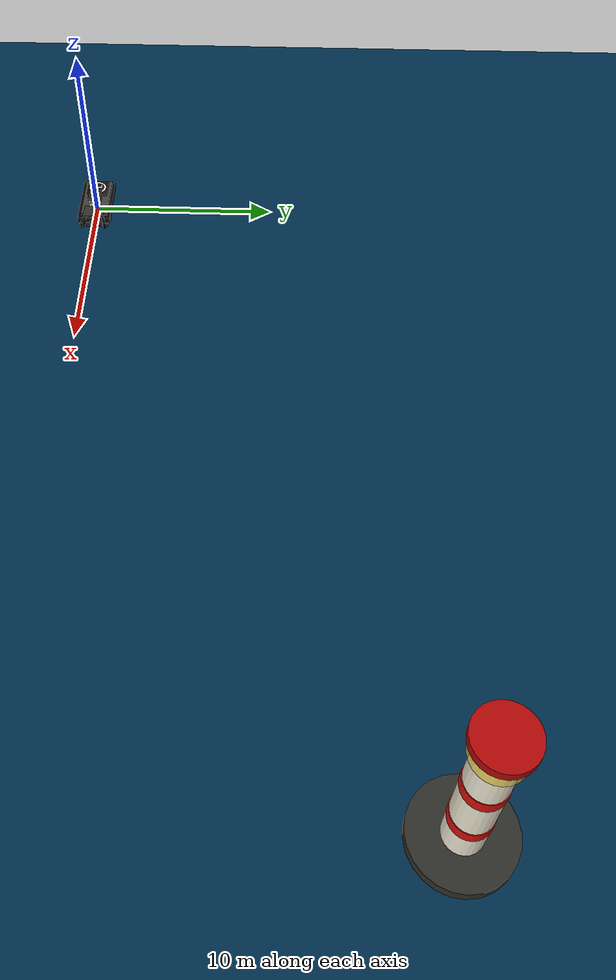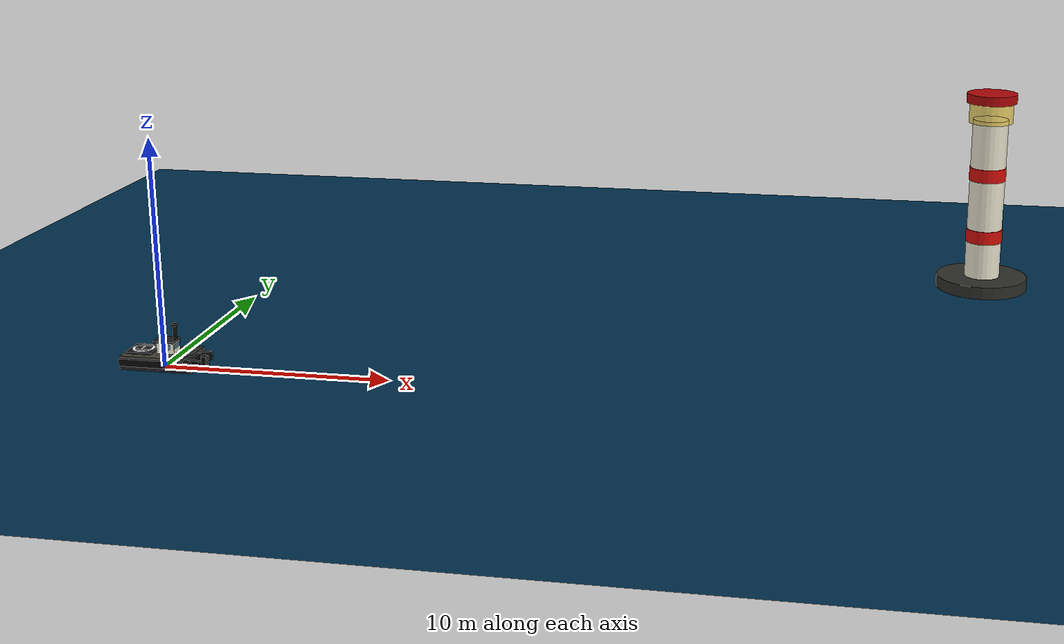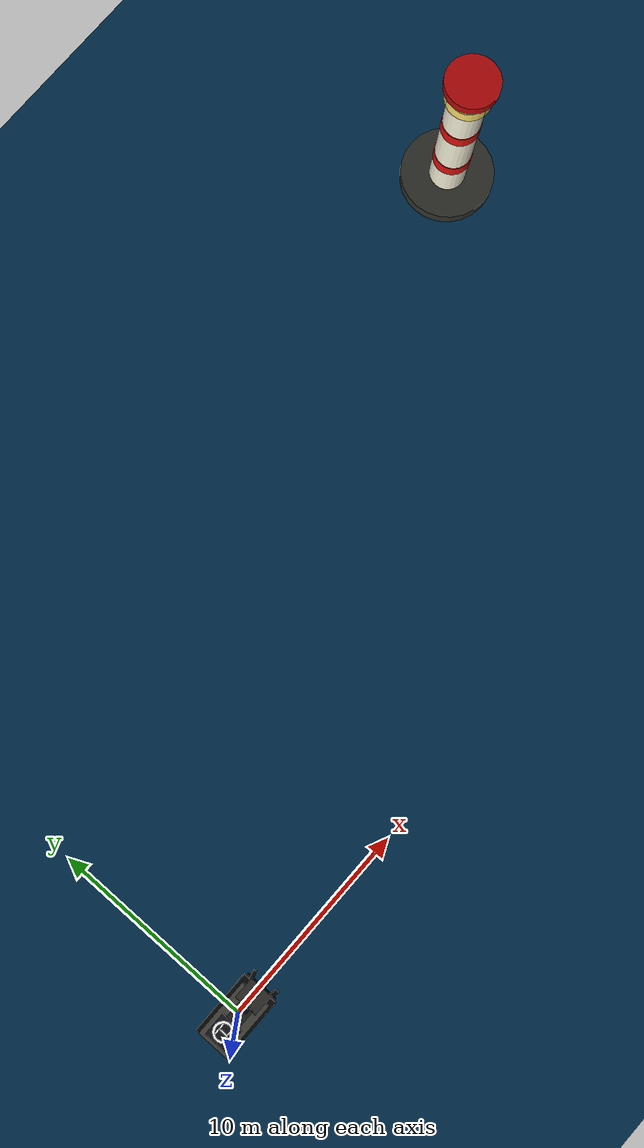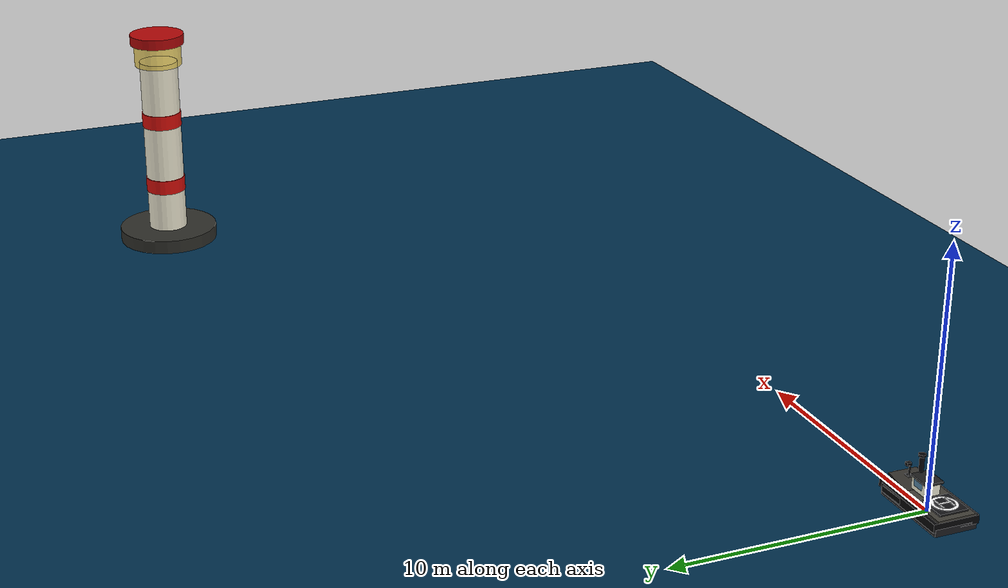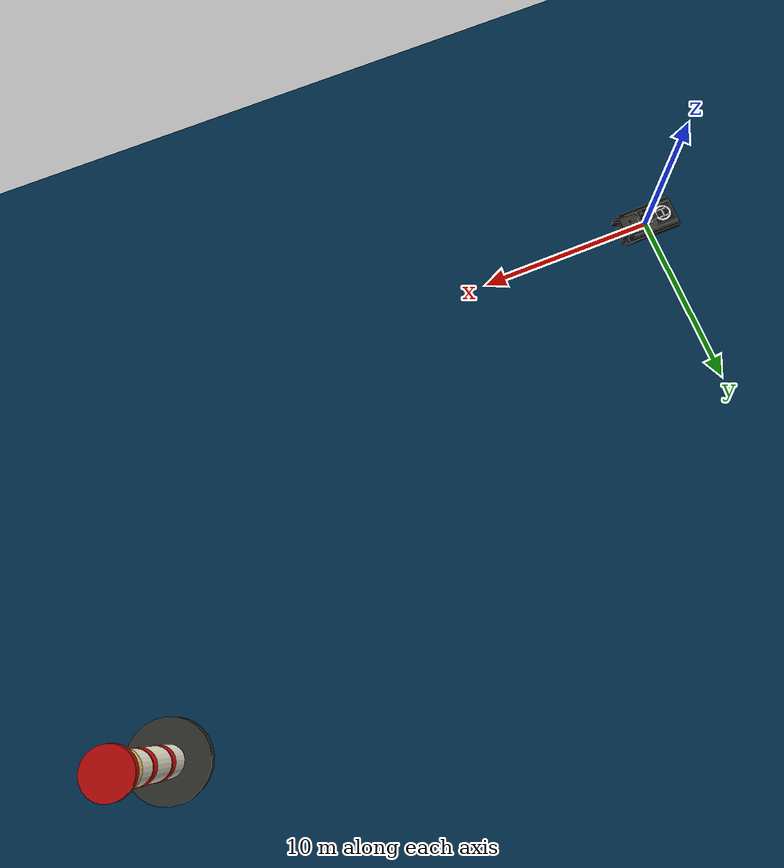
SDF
<sdf version="1.10">
 <world name="default">
  <plugin filename="gz-sim-physics-system" name="gz::sim::systems::Physics"/>
  <plugin filename="gz-sim-user-commands-system" name="gz::sim::systems::UserCommands"/>
  <plugin filename="gz-sim-scene-broadcaster-system" name="gz::sim::systems::SceneBroadcaster"/>
  <plugin filename="gz-sim-contact-system" name="gz::sim::systems::Contact"/>
  <plugin filename="gz-sim-imu-system" name="gz::sim::systems::Imu"/>
  <plugin filename="gz-sim-air-pressure-system" name="gz::sim::systems::AirPressure"/>
  <plugin filename="gz-sim-air-speed-system" name="gz::sim::systems::AirSpeed"/>
  <plugin filename="gz-sim-apply-link-wrench-system" name="gz::sim::systems::ApplyLinkWrench"/>
  <plugin filename="gz-sim-navsat-system" name="gz::sim::systems::NavSat"/>
  <plugin filename="gz-sim-magnetometer-system" name="gz::sim::systems::Magnetometer"/>
  <plugin filename="gz-sim-sensors-system" name="gz::sim::systems::Sensors">
   <render_engine>ogre2</render_engine>
  </plugin>
  <physics type="ode">
   <max_step_size>0.0040000000000000001</max_step_size>
   <real_time_factor>1</real_time_factor>
   <real_time_update_rate>250</real_time_update_rate>
  </physics>
  <gravity>0 0 -9.8000000000000007</gravity>
  <magnetic_field>6.0000000000000002e-06 2.3e-05 -4.1999999999999998e-05</magnetic_field>
  <atmosphere type="adiabatic"/>
  <scene>
   <grid>false</grid>
   <ambient>0.400000006 0.400000006 0.400000006 1</ambient>
   <background>0.699999988 0.699999988 0.699999988 1</background>
   <shadows>true</shadows>
  </scene>
  <spherical_coordinates>
   <surface_model>EARTH_WGS84</surface_model>
   <world_frame_orientation>ENU</world_frame_orientation>
   <latitude_deg>47.397971057728974</latitude_deg>
   <longitude_deg>8.5461637398001464</longitude_deg>
   <elevation>0</elevation>
   <heading_deg>0</heading_deg>
  </spherical_coordinates>
  <model name="ocean_plane">
   <static>true</static>
   <link name="ocean_link">
    <visual name="ocean_visual">
     <pose>0 0 -0.02 0 0 0</pose>
     <geometry><plane><normal>0 0 1</normal><size>1000 1000</size></plane></geometry>
     <material>
      <ambient>0 0.08 0.16 0.45</ambient>
      <diffuse>0 0.18 0.3 0.45</diffuse>
      <specular>0.03 0.05 0.06 1</specular>
     </material>
    </visual>
    <collision name="ocean_collision">
     <geometry><plane><normal>0 0 1</normal><size>300 300</size></plane></geometry>
    </collision>
    <inertial>
     <mass>1</mass>
     <inertia><ixx>1</ixx><ixy>0</ixy><ixz>0</ixz><iyy>1</iyy><iyz>0</iyz><izz>1</izz></inertia>
    </inertial>
   </link>
  </model>
  <plugin filename="libDroneDeckFollower.so" name="gz::sim::systems::DroneDeckFollower">
   <boat_name>landing_boat</boat_name>
   <drone_name>x500_0</drone_name>
   <deck_offset>-0.92 0 0.43 0 0 0</deck_offset>
   <release_topic>/model/x500_0/release_from_deck</release_topic>
   <relock_duration>4.0</relock_duration>
   <release_vertical_speed>0.9</release_vertical_speed>
   <release_after>1000000</release_after>
  </plugin>
  <model name="navigation_lighthouse">
   <static>true</static>
   <pose>35 18 0 0 0 0</pose>
   <link name="lighthouse_link">
    <collision name="base_collision">
     <pose>0 0 0.3 0 0 0</pose>
     <geometry><cylinder><radius>2.2</radius><length>0.6</length></cylinder></geometry>
    </collision>
    <visual name="base_visual">
     <pose>0 0 0.3 0 0 0</pose>
     <geometry><cylinder><radius>2.2</radius><length>0.6</length></cylinder></geometry>
     <material>
      <ambient>0.12 0.12 0.12 1</ambient>
      <diffuse>0.18 0.18 0.16 1</diffuse>
      <specular>0.05 0.05 0.05 1</specular>
     </material>
    </visual>
    <collision name="tower_collision">
     <pose>0 0 4.4 0 0 0</pose>
     <geometry><cylinder><radius>0.85</radius><length>8.2</length></cylinder></geometry>
    </collision>
    <visual name="tower_white_visual">
     <pose>0 0 4.4 0 0 0</pose>
     <geometry><cylinder><radius>0.85</radius><length>8.2</length></cylinder></geometry>
     <material>
      <ambient>0.85 0.83 0.76 1</ambient>
      <diffuse>0.95 0.93 0.84 1</diffuse>
      <specular>0.2 0.2 0.18 1</specular>
     </material>
    </visual>
    <visual name="red_band_lower_visual">
     <pose>0 0 2.7 0 0 0</pose>
     <geometry><cylinder><radius>0.88</radius><length>0.65</length></cylinder></geometry>
     <material>
      <ambient>0.55 0.04 0.03 1</ambient>
      <diffuse>0.85 0.06 0.04 1</diffuse>
      <specular>0.15 0.03 0.03 1</specular>
     </material>
    </visual>
    <visual name="red_band_upper_visual">
     <pose>0 0 5.8 0 0 0</pose>
     <geometry><cylinder><radius>0.88</radius><length>0.65</length></cylinder></geometry>
     <material>
      <ambient>0.55 0.04 0.03 1</ambient>
      <diffuse>0.85 0.06 0.04 1</diffuse>
      <specular>0.15 0.03 0.03 1</specular>
     </material>
    </visual>
    <visual name="lantern_room_visual">
     <pose>0 0 8.8 0 0 0</pose>
     <geometry><cylinder><radius>1.05</radius><length>0.9</length></cylinder></geometry>
     <material>
      <ambient>0.95 0.82 0.32 0.85</ambient>
      <diffuse>1 0.88 0.4 0.85</diffuse>
      <specular>1 0.95 0.7 1</specular>
     </material>
    </visual>
    <visual name="roof_visual">
     <pose>0 0 9.55 0 0 0</pose>
     <geometry><cylinder><radius>1.2</radius><length>0.45</length></cylinder></geometry>
     <material>
      <ambient>0.45 0.02 0.02 1</ambient>
      <diffuse>0.7 0.03 0.03 1</diffuse>
      <specular>0.18 0.04 0.04 1</specular>
     </material>
    </visual>
    <light name="beacon_light" type="point">
     <pose>0 0 8.95 0 0 0</pose>
     <cast_shadows>false</cast_shadows>
     <intensity>3</intensity>
     <diffuse>1 0.86 0.35 1</diffuse>
     <specular>1 0.9 0.55 1</specular>
     <attenuation>
      <range>80</range>
      <constant>0.6</constant>
      <linear>0.02</linear>
      <quadratic>0.001</quadratic>
     </attenuation>
    </light>
   </link>
  </model>
  <include>
   <uri>model://simple_boat</uri>
   <name>landing_boat</name>
   <pose>0 0 0.34999999999999998 0 0 0</pose>
  </include>
  <light name="directionallight" type="directional">
   <pose>3.6650413048508694 0.062467871162392719 2 0 0 0</pose>
   <intensity>1</intensity>
   <direction>0 0 -1</direction>
   <diffuse>0.800000012 0.800000012 0.800000012 1</diffuse>
   <specular>0.200000003 0.200000003 0.200000003 1</specular>
   <attenuation>
    <range>1000</range>
    <linear>0.01</linear>
    <constant>0.90000000000000002</constant>
    <quadratic>0.001</quadratic>
   </attenuation>
   <spot><inner_angle>0</inner_angle><outer_angle>0</outer_angle><falloff>0</falloff></spot>
  </light>
 </world>
</sdf>

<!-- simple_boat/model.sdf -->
<sdf version="1.8">
  <model name="simple_boat">
    <pose>0 0 0.35 0 0 0</pose>

    <link name="hull">
      <inertial>
        <mass>70.0</mass>
        <inertia>
          <ixx>22.0</ixx>
          <iyy>48.0</iyy>
          <izz>58.0</izz>
          <ixy>0</ixy>
          <ixz>0</ixz>
          <iyz>0</iyz>
        </inertia>
      </inertial>

      <collision name="hull_collision">
        <pose>0 0 -0.05 0 0 0</pose>
        <geometry>
          <box>
            <size>3.4 1.9 0.5</size>
          </box>
        </geometry>
      </collision>

      <visual name="lower_hull">
        <pose>-0.05 0 -0.16 0 0 0</pose>
        <geometry>
          <box>
            <size>3.25 1.65 0.28</size>
          </box>
        </geometry>
        <material>
          <ambient>0.08 0.08 0.09 1</ambient>
          <diffuse>0.12 0.12 0.13 1</diffuse>
          <specular>0.1 0.1 0.1 1</specular>
        </material>
      </visual>

      <visual name="upper_hull">
        <pose>-0.1 0 0.05 0 0 0</pose>
        <geometry>
          <box>
            <size>3.15 1.82 0.32</size>
          </box>
        </geometry>
        <material>
          <ambient>0.015 0.015 0.018 1</ambient>
          <diffuse>0.025 0.025 0.03 1</diffuse>
          <specular>0.18 0.18 0.2 1</specular>
        </material>
      </visual>

      <visual name="bow_side_left">
        <pose>1.46 0.52 0.04 0 0 0.31</pose>
        <geometry>
          <box>
            <size>0.92 0.16 0.38</size>
          </box>
        </geometry>
        <material>
          <ambient>0.015 0.015 0.018 1</ambient>
          <diffuse>0.025 0.025 0.03 1</diffuse>
          <specular>0.18 0.18 0.2 1</specular>
        </material>
      </visual>

      <visual name="bow_side_right">
        <pose>1.46 -0.52 0.04 0 0 -0.31</pose>
        <geometry>
          <box>
            <size>0.92 0.16 0.38</size>
          </box>
        </geometry>
        <material>
          <ambient>0.015 0.015 0.018 1</ambient>
          <diffuse>0.025 0.025 0.03 1</diffuse>
          <specular>0.18 0.18 0.2 1</specular>
        </material>
      </visual>

      <visual name="bow_center_nose">
        <pose>1.82 0 0.04 0 0 0</pose>
        <geometry>
          <box>
            <size>0.2 0.32 0.4</size>
          </box>
        </geometry>
        <material>
          <ambient>0.012 0.012 0.015 1</ambient>
          <diffuse>0.022 0.022 0.026 1</diffuse>
          <specular>0.16 0.16 0.18 1</specular>
        </material>
      </visual>

      <visual name="bow_keel_line">
        <pose>1.55 0 -0.34 0 1.5708 0</pose>
        <geometry>
          <cylinder>
            <radius>0.028</radius>
            <length>0.72</length>
          </cylinder>
        </geometry>
        <material>
          <ambient>0.006 0.006 0.008 1</ambient>
          <diffuse>0.012 0.012 0.014 1</diffuse>
        </material>
      </visual>

      <visual name="foredeck_slope">
        <pose>1.05 0 0.36 0 -0.16 0</pose>
        <geometry>
          <box>
            <size>1.1 1.16 0.055</size>
          </box>
        </geometry>
        <material>
          <ambient>0.12 0.12 0.115 1</ambient>
          <diffuse>0.2 0.19 0.17 1</diffuse>
          <specular>0.08 0.08 0.08 1</specular>
        </material>
      </visual>

      <visual name="bow_stem">
        <pose>1.94 0 0.03 0 0 0</pose>
        <geometry>
          <box>
            <size>0.08 0.12 0.42</size>
          </box>
        </geometry>
        <material>
          <ambient>0.01 0.01 0.012 1</ambient>
          <diffuse>0.02 0.02 0.024 1</diffuse>
          <specular>0.16 0.16 0.18 1</specular>
        </material>
      </visual>

      <visual name="hull_side_fairing_left">
        <pose>0.05 0.86 0.04 0 0 0.035</pose>
        <geometry>
          <box>
            <size>2.65 0.08 0.22</size>
          </box>
        </geometry>
        <material>
          <ambient>0.01 0.01 0.012 1</ambient>
          <diffuse>0.018 0.018 0.022 1</diffuse>
          <specular>0.14 0.14 0.16 1</specular>
        </material>
      </visual>

      <visual name="hull_side_fairing_right">
        <pose>0.05 -0.86 0.04 0 0 -0.035</pose>
        <geometry>
          <box>
            <size>2.65 0.08 0.22</size>
          </box>
        </geometry>
        <material>
          <ambient>0.01 0.01 0.012 1</ambient>
          <diffuse>0.018 0.018 0.022 1</diffuse>
          <specular>0.14 0.14 0.16 1</specular>
        </material>
      </visual>

      <visual name="deck">
        <pose>-0.25 0 0.25 0 0 0</pose>
        <geometry>
          <box>
            <size>2.85 1.5 0.08</size>
          </box>
        </geometry>
        <material>
          <ambient>0.18 0.18 0.17 1</ambient>
          <diffuse>0.26 0.25 0.22 1</diffuse>
          <specular>0.08 0.08 0.08 1</specular>
        </material>
      </visual>

      <visual name="cabin_body">
        <pose>0.2 0 0.58 0 0 0</pose>
        <geometry>
          <box>
            <size>0.78 0.62 0.48</size>
          </box>
        </geometry>
        <material>
          <ambient>0.86 0.86 0.8 1</ambient>
          <diffuse>0.96 0.95 0.86 1</diffuse>
          <specular>0.28 0.28 0.24 1</specular>
        </material>
      </visual>

      <visual name="front_window">
        <pose>0.6 0 0.64 0 0.28 0</pose>
        <geometry>
          <box>
            <size>0.035 0.48 0.24</size>
          </box>
        </geometry>
        <material>
          <ambient>0.05 0.22 0.36 0.65</ambient>
          <diffuse>0.08 0.38 0.62 0.65</diffuse>
          <specular>0.9 0.95 1 1</specular>
        </material>
      </visual>

      <visual name="left_window">
        <pose>0.2 0.325 0.64 0 0 0</pose>
        <geometry>
          <box>
            <size>0.45 0.025 0.22</size>
          </box>
        </geometry>
        <material>
          <ambient>0.05 0.22 0.36 0.65</ambient>
          <diffuse>0.08 0.38 0.62 0.65</diffuse>
          <specular>0.9 0.95 1 1</specular>
        </material>
      </visual>

      <visual name="right_window">
        <pose>0.2 -0.325 0.64 0 0 0</pose>
        <geometry>
          <box>
            <size>0.45 0.025 0.22</size>
          </box>
        </geometry>
        <material>
          <ambient>0.05 0.22 0.36 0.65</ambient>
          <diffuse>0.08 0.38 0.62 0.65</diffuse>
          <specular>0.9 0.95 1 1</specular>
        </material>
      </visual>

      <visual name="cabin_roof">
        <pose>0.15 0 0.85 0 0 0</pose>
        <geometry>
          <box>
            <size>0.92 0.72 0.08</size>
          </box>
        </geometry>
        <material>
          <ambient>0.08 0.08 0.08 1</ambient>
          <diffuse>0.12 0.12 0.12 1</diffuse>
          <specular>0.18 0.18 0.18 1</specular>
        </material>
      </visual>

      <collision name="landing_pad_collision">
        <pose>-0.92 0 0.36 0 0 0</pose>
        <geometry>
          <box>
            <size>1.7 1.55 0.24</size>
          </box>
        </geometry>
        <surface>
          <contact>
            <ode>
              <min_depth>0.001</min_depth>
              <max_vel>0</max_vel>
            </ode>
          </contact>
          <friction>
            <ode>
              <mu>1.5</mu>
              <mu2>1.5</mu2>
            </ode>
          </friction>
        </surface>
      </collision>

      <visual name="landing_pad_visual">
        <pose>-0.92 0 0.38 0 0 0</pose>
        <geometry>
          <box>
            <size>1.15 1.15 0.08</size>
          </box>
        </geometry>
        <material>
          <ambient>0.04 0.04 0.045 1</ambient>
          <diffuse>0.08 0.08 0.09 1</diffuse>
          <specular>0.08 0.08 0.08 1</specular>
        </material>
      </visual>

      <visual name="landing_pad_ring">
        <pose>-0.92 0 0.435 0 0 0</pose>
        <geometry>
          <cylinder>
            <radius>0.48</radius>
            <length>0.012</length>
          </cylinder>
        </geometry>
        <material>
          <ambient>1 1 1 1</ambient>
          <diffuse>1 1 1 1</diffuse>
        </material>
      </visual>

      <visual name="landing_pad_center">
        <pose>-0.92 0 0.445 0 0 0</pose>
        <geometry>
          <cylinder>
            <radius>0.36</radius>
            <length>0.014</length>
          </cylinder>
        </geometry>
        <material>
          <ambient>0.04 0.04 0.045 1</ambient>
          <diffuse>0.08 0.08 0.09 1</diffuse>
        </material>
      </visual>

      <visual name="landing_h_left">
        <pose>-0.92 0.22 0.458 0 0 0</pose>
        <geometry>
          <box>
            <size>0.58 0.07 0.012</size>
          </box>
        </geometry>
        <material>
          <ambient>1 1 1 1</ambient>
          <diffuse>1 1 1 1</diffuse>
        </material>
      </visual>

      <visual name="landing_h_right">
        <pose>-0.92 -0.22 0.458 0 0 0</pose>
        <geometry>
          <box>
            <size>0.58 0.07 0.012</size>
          </box>
        </geometry>
        <material>
          <ambient>1 1 1 1</ambient>
          <diffuse>1 1 1 1</diffuse>
        </material>
      </visual>

      <visual name="landing_h_crossbar">
        <pose>-0.92 0 0.462 0 0 0</pose>
        <geometry>
          <box>
            <size>0.08 0.52 0.012</size>
          </box>
        </geometry>
        <material>
          <ambient>1 1 1 1</ambient>
          <diffuse>1 1 1 1</diffuse>
        </material>
      </visual>

      <visual name="mast">
        <pose>-0.05 0 1.1 0 0 0</pose>
        <geometry>
          <cylinder>
            <radius>0.018</radius>
            <length>0.55</length>
          </cylinder>
        </geometry>
        <material>
          <ambient>0.02 0.02 0.02 1</ambient>
          <diffuse>0.02 0.02 0.02 1</diffuse>
        </material>
      </visual>

      <visual name="nav_light">
        <pose>-0.05 0 1.39 0 0 0</pose>
        <geometry>
          <sphere>
            <radius>0.055</radius>
          </sphere>
        </geometry>
        <material>
          <ambient>1 0.85 0.25 1</ambient>
          <diffuse>1 0.85 0.25 1</diffuse>
          <specular>1 0.9 0.5 1</specular>
        </material>
      </visual>

      <visual name="lidar_mount">
        <pose>0.55 0 1.24 0 0 0</pose>
        <geometry>
          <cylinder>
            <radius>0.09</radius>
            <length>0.62</length>
          </cylinder>
        </geometry>
        <material>
          <ambient>0.02 0.02 0.022 1</ambient>
          <diffuse>0.04 0.04 0.045 1</diffuse>
          <specular>0.2 0.2 0.22 1</specular>
        </material>
      </visual>

      <visual name="lidar_body">
        <pose>0.55 0 1.57 0 0 0</pose>
        <geometry>
          <cylinder>
            <radius>0.14</radius>
            <length>0.08</length>
          </cylinder>
        </geometry>
        <material>
          <ambient>0.01 0.01 0.012 1</ambient>
          <diffuse>0.02 0.02 0.024 1</diffuse>
          <specular>0.35 0.35 0.38 1</specular>
        </material>
      </visual>

      <visual name="front_camera_mount_base">
        <pose>1.2 0 0.455 0 0 0</pose>
        <geometry>
          <box>
            <size>0.24 0.2 0.04</size>
          </box>
        </geometry>
        <material>
          <ambient>0.025 0.025 0.028 1</ambient>
          <diffuse>0.04 0.04 0.045 1</diffuse>
          <specular>0.18 0.18 0.2 1</specular>
        </material>
      </visual>

      <visual name="front_camera_mount_post">
        <pose>1.2 0 0.65 0 0 0</pose>
        <geometry>
          <cylinder>
            <radius>0.035</radius>
            <length>0.35</length>
          </cylinder>
        </geometry>
        <material>
          <ambient>0.018 0.018 0.02 1</ambient>
          <diffuse>0.03 0.03 0.034 1</diffuse>
          <specular>0.18 0.18 0.2 1</specular>
        </material>
      </visual>

      <visual name="front_camera_body">
        <pose>1.29 0 0.86 0 0 0</pose>
        <geometry>
          <box>
            <size>0.16 0.18 0.12</size>
          </box>
        </geometry>
        <material>
          <ambient>0.015 0.015 0.018 1</ambient>
          <diffuse>0.025 0.025 0.03 1</diffuse>
          <specular>0.2 0.2 0.22 1</specular>
        </material>
      </visual>

      <visual name="front_camera_lens">
        <pose>1.385 0 0.86 0 1.5708 0</pose>
        <geometry>
          <cylinder>
            <radius>0.045</radius>
            <length>0.025</length>
          </cylinder>
        </geometry>
        <material>
          <ambient>0.02 0.04 0.06 1</ambient>
          <diffuse>0.03 0.08 0.12 1</diffuse>
          <specular>0.8 0.9 1 1</specular>
        </material>
      </visual>

      <sensor name="front_camera" type="camera">
        <pose>1.405 0 0.86 0 0 0</pose>
        <topic>/boat/front_camera</topic>
        <update_rate>15</update_rate>
        <camera>
          <horizontal_fov>1.047</horizontal_fov>
          <image>
            <width>1280</width>
            <height>720</height>
            <format>R8G8B8</format>
          </image>
          <clip>
            <near>0.05</near>
            <far>200</far>
          </clip>
        </camera>
        <always_on>true</always_on>
        <visualize>true</visualize>
      </sensor>

      <sensor name="front_lidar" type="gpu_lidar">
        <gz_frame_id>landing_boat/hull/front_lidar</gz_frame_id>
        <pose>0.55 0 1.55 0 0 0</pose>
        <topic>/boat/scan</topic>
        <update_rate>10</update_rate>
        <ray>
          <scan>
            <horizontal>
              <samples>361</samples>
              <resolution>1</resolution>
              <min_angle>-1.5708</min_angle>
              <max_angle>1.5708</max_angle>
            </horizontal>
          </scan>
          <range>
            <min>0.35</min>
            <max>80</max>
            <resolution>0.02</resolution>
          </range>
          <noise>
            <type>gaussian</type>
            <mean>0</mean>
            <stddev>0.01</stddev>
          </noise>
        </ray>
        <always_on>true</always_on>
        <visualize>true</visualize>
      </sensor>
    </link>

    <plugin
      filename="gz-sim-velocity-control-system"
      name="gz::sim::systems::VelocityControl">
      <topic>/model/simple_boat/cmd_vel</topic>
      <control_linear_velocity>true</control_linear_velocity>
      <control_angular_velocity>true</control_angular_velocity>
    </plugin>

    <plugin
      filename="gz-sim-pose-publisher-system"
      name="gz::sim::systems::PosePublisher">
      <publish_model_pose>true</publish_model_pose>
      <publish_link_pose>false</publish_link_pose>
      <publish_collision_pose>false</publish_collision_pose>
      <publish_visual_pose>false</publish_visual_pose>
      <publish_nested_model_pose>false</publish_nested_model_pose>
      <publish_sensor_pose>false</publish_sensor_pose>
      <use_pose_vector_msg>false</use_pose_vector_msg>
      <topic>/boat/pose</topic>
      <update_frequency>30</update_frequency>
    </plugin>

    <plugin
      filename="libBoatWaveFollower.so"
      name="gz::sim::systems::BoatWaveFollower">
      <mean_z>0.42</mean_z>
      <heave_amplitude>0.11</heave_amplitude>
      <roll_amplitude>0.055</roll_amplitude>
      <pitch_amplitude>0.045</pitch_amplitude>
      <primary_frequency>1.1</primary_frequency>
      <secondary_frequency>1.7</secondary_frequency>
      <wave_number_x>0.35</wave_number_x>
      <wave_number_y>0.22</wave_number_y>
    </plugin>
  </model>
</sdf>
